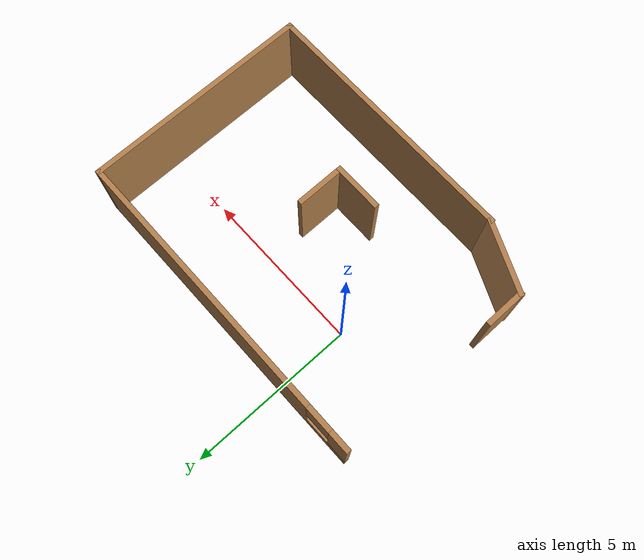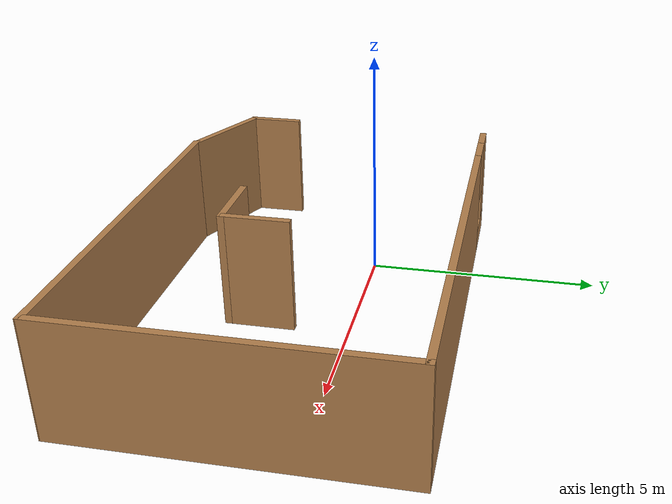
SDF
<?xml version='1.0'?>
<sdf version='1.7'>
  <model name='edit_world'>
    <pose>2.21794 -1.13682 0 0 -0 0</pose>
    <link name='Wall_10'>
      <collision name='Wall_10_Collision'>
        <geometry>
          <box>
            <size>6.81013 0.15 2.5</size>
          </box>
        </geometry>
        <pose>0 0 1.25 0 -0 0</pose>
      </collision>
      <visual name='Wall_10_Visual'>
        <pose>0 0 1.25 0 -0 0</pose>
        <geometry>
          <box>
            <size>6.81013 0.15 2.5</size>
          </box>
        </geometry>
        <material>
          <script>
            <uri>file://media/materials/scripts/gazebo.material</uri>
            <name>Gazebo/Wood</name>
          </script>
          <ambient>1 1 1 1</ambient>
        </material>
        <meta>
          <layer>0</layer>
        </meta>
      </visual>
      <pose>4.87217 0.012105 0 0 -0 1.5708</pose>
    </link>
    <link name='Wall_11'>
      <pose>0.052056 3.34216 0 0 -0 3.14159</pose>
      <visual name='Wall_11_Visual_0'>
        <pose>-0.7275 0 1.25 0 -0 0</pose>
        <geometry>
          <box>
            <size>8.295 0.15 2.5</size>
          </box>
        </geometry>
        <material>
          <script>
            <uri>file://media/materials/scripts/gazebo.material</uri>
            <name>Gazebo/Wood</name>
          </script>
          <ambient>1 1 1 1</ambient>
        </material>
        <meta>
          <layer>0</layer>
        </meta>
      </visual>
      <collision name='Wall_11_Collision_0'>
        <geometry>
          <box>
            <size>8.295 0.15 2.5</size>
          </box>
        </geometry>
        <pose>-0.7275 0 1.25 0 -0 0</pose>
      </collision>
      <visual name='Wall_11_Visual_1'>
        <pose>4.1475 0 0.25 0 -0 0</pose>
        <geometry>
          <box>
            <size>1.455 0.15 0.5</size>
          </box>
        </geometry>
        <material>
          <script>
            <uri>file://media/materials/scripts/gazebo.material</uri>
            <name>Gazebo/Wood</name>
          </script>
          <ambient>1 1 1 1</ambient>
        </material>
        <meta>
          <layer>0</layer>
        </meta>
      </visual>
      <collision name='Wall_11_Collision_1'>
        <geometry>
          <box>
            <size>1.455 0.15 0.5</size>
          </box>
        </geometry>
        <pose>4.1475 0 0.25 0 -0 0</pose>
      </collision>
      <visual name='Wall_11_Visual_2'>
        <pose>4.5475 0 1.5 0 -0 0</pose>
        <geometry>
          <box>
            <size>0.655 0.15 2</size>
          </box>
        </geometry>
        <material>
          <script>
            <uri>file://media/materials/scripts/gazebo.material</uri>
            <name>Gazebo/Wood</name>
          </script>
          <ambient>1 1 1 1</ambient>
        </material>
        <meta>
          <layer>0</layer>
        </meta>
      </visual>
      <collision name='Wall_11_Collision_2'>
        <geometry>
          <box>
            <size>0.655 0.15 2</size>
          </box>
        </geometry>
        <pose>4.5475 0 1.5 0 -0 0</pose>
      </collision>
      <visual name='Wall_11_Visual_3'>
        <pose>3.82 0 1.9 0 -0 0</pose>
        <geometry>
          <box>
            <size>0.8 0.15 1.2</size>
          </box>
        </geometry>
        <material>
          <script>
            <uri>file://media/materials/scripts/gazebo.material</uri>
            <name>Gazebo/Wood</name>
          </script>
          <ambient>1 1 1 1</ambient>
        </material>
        <meta>
          <layer>0</layer>
        </meta>
      </visual>
      <collision name='Wall_11_Collision_3'>
        <geometry>
          <box>
            <size>0.8 0.15 1.2</size>
          </box>
        </geometry>
        <pose>3.82 0 1.9 0 -0 0</pose>
      </collision>
    </link>
    <link name='Wall_13'>
      <collision name='Wall_13_Collision'>
        <geometry>
          <box>
            <size>1.5 0.15 2.5</size>
          </box>
        </geometry>
        <pose>0 0 1.25 0 -0 0</pose>
      </collision>
      <visual name='Wall_13_Visual'>
        <pose>0 0 1.25 0 -0 0</pose>
        <geometry>
          <box>
            <size>1.5 0.15 2.5</size>
          </box>
        </geometry>
        <material>
          <script>
            <uri>file://media/materials/scripts/gazebo.material</uri>
            <name>Gazebo/Wood</name>
          </script>
          <ambient>1 1 1 1</ambient>
        </material>
        <meta>
          <layer>0</layer>
        </meta>
      </visual>
      <pose>0.692056 -0.738176 0 0 -0 -1.5708</pose>
    </link>
    <link name='Wall_14'>
      <collision name='Wall_14_Collision'>
        <geometry>
          <box>
            <size>1.5 0.15 2.5</size>
          </box>
        </geometry>
        <pose>0 0 1.25 0 -0 0</pose>
      </collision>
      <visual name='Wall_14_Visual'>
        <pose>0 0 1.25 0 -0 0</pose>
        <geometry>
          <box>
            <size>1.5 0.15 2.5</size>
          </box>
        </geometry>
        <material>
          <script>
            <uri>file://media/materials/scripts/gazebo.material</uri>
            <name>Gazebo/Wood</name>
          </script>
          <ambient>1 1 1 1</ambient>
        </material>
        <meta>
          <layer>0</layer>
        </meta>
      </visual>
      <pose>0.017056 -1.41318 0 0 -0 3.14159</pose>
    </link>
    <link name='Wall_4'>
      <collision name='Wall_4_Collision'>
        <geometry>
          <box>
            <size>2.20206 0.15 2.5</size>
          </box>
        </geometry>
        <pose>0 0 1.25 0 -0 0</pose>
      </collision>
      <visual name='Wall_4_Visual'>
        <pose>0 0 1.25 0 -0 0</pose>
        <geometry>
          <box>
            <size>2.20206 0.15 2.5</size>
          </box>
        </geometry>
        <material>
          <script>
            <uri>file://media/materials/scripts/gazebo.material</uri>
            <name>Gazebo/Wood</name>
          </script>
          <ambient>1 1 1 1</ambient>
        </material>
        <meta>
          <layer>0</layer>
        </meta>
      </visual>
      <pose>-3.91289 -2.89556 0 0 -0 -0.424284</pose>
    </link>
    <link name='Wall_7'>
      <collision name='Wall_7_Collision'>
        <geometry>
          <box>
            <size>1.25 0.15 2.5</size>
          </box>
        </geometry>
        <pose>0 0 1.25 0 -0 0</pose>
      </collision>
      <visual name='Wall_7_Visual'>
        <pose>0 0 1.25 0 -0 0</pose>
        <geometry>
          <box>
            <size>1.25 0.15 2.5</size>
          </box>
        </geometry>
        <material>
          <script>
            <uri>file://media/materials/scripts/gazebo.material</uri>
            <name>Gazebo/Wood</name>
          </script>
          <ambient>1 1 1 1</ambient>
        </material>
        <meta>
          <layer>0</layer>
        </meta>
      </visual>
      <pose>-4.84794 -1.92318 0 0 -0 -1.5708</pose>
    </link>
    <link name='Wall_9'>
      <collision name='Wall_9_Collision'>
        <geometry>
          <box>
            <size>8 0.15 2.5</size>
          </box>
        </geometry>
        <pose>0 0 1.25 0 -0 0</pose>
      </collision>
      <visual name='Wall_9_Visual'>
        <pose>0 0 1.25 0 -0 0</pose>
        <geometry>
          <box>
            <size>8 0.15 2.5</size>
          </box>
        </geometry>
        <material>
          <script>
            <uri>file://media/materials/scripts/gazebo.material</uri>
            <name>Gazebo/Wood</name>
          </script>
          <ambient>1 1 1 1</ambient>
        </material>
        <meta>
          <layer>0</layer>
        </meta>
      </visual>
      <pose>0.947169 -3.33806 0 0 -0 0</pose>
    </link>
    <static>1</static>
  </model>
</sdf>
